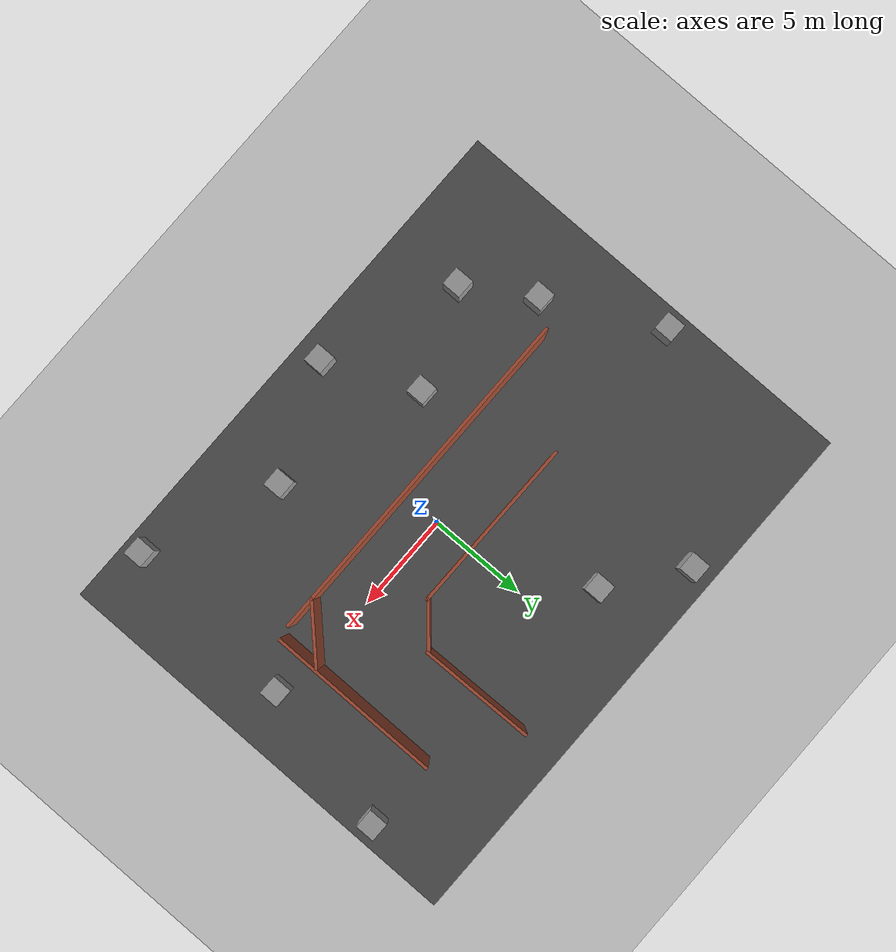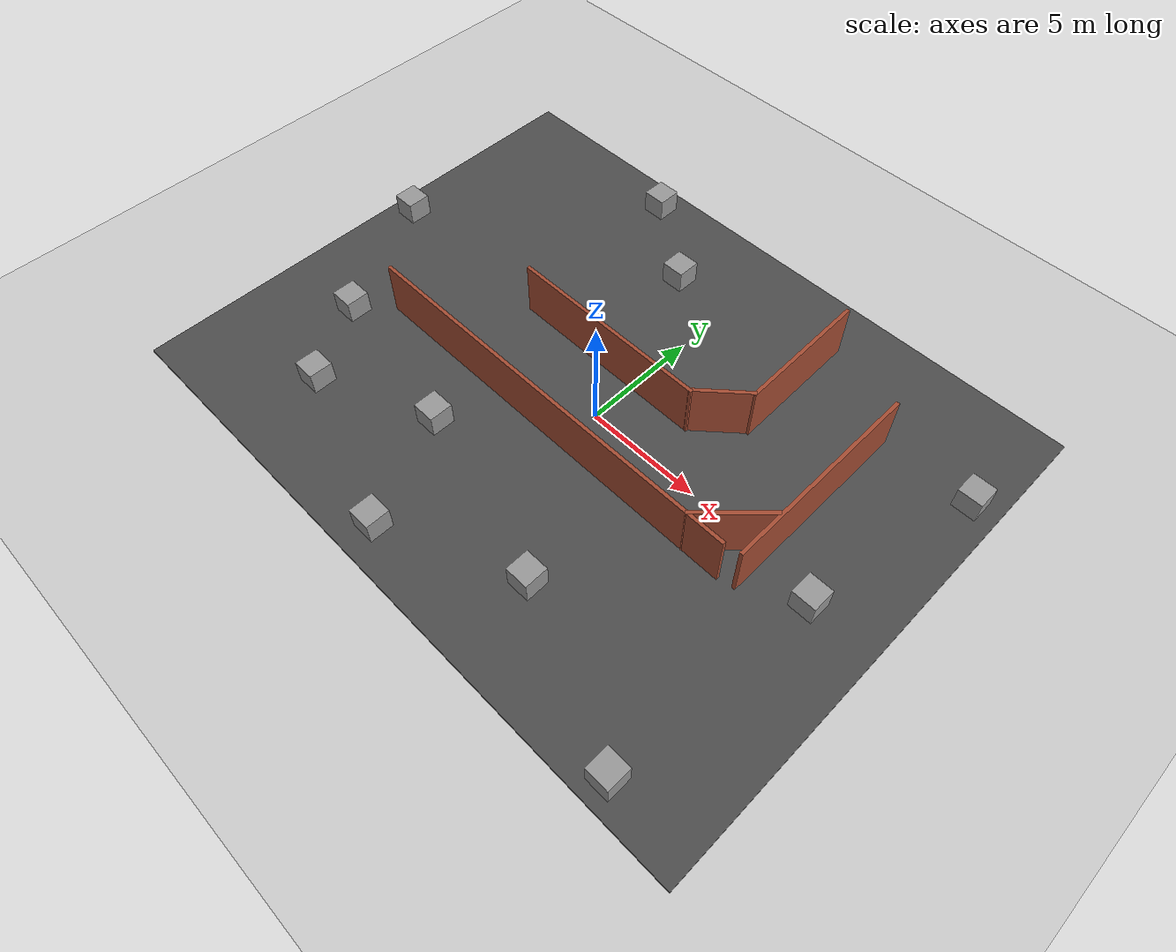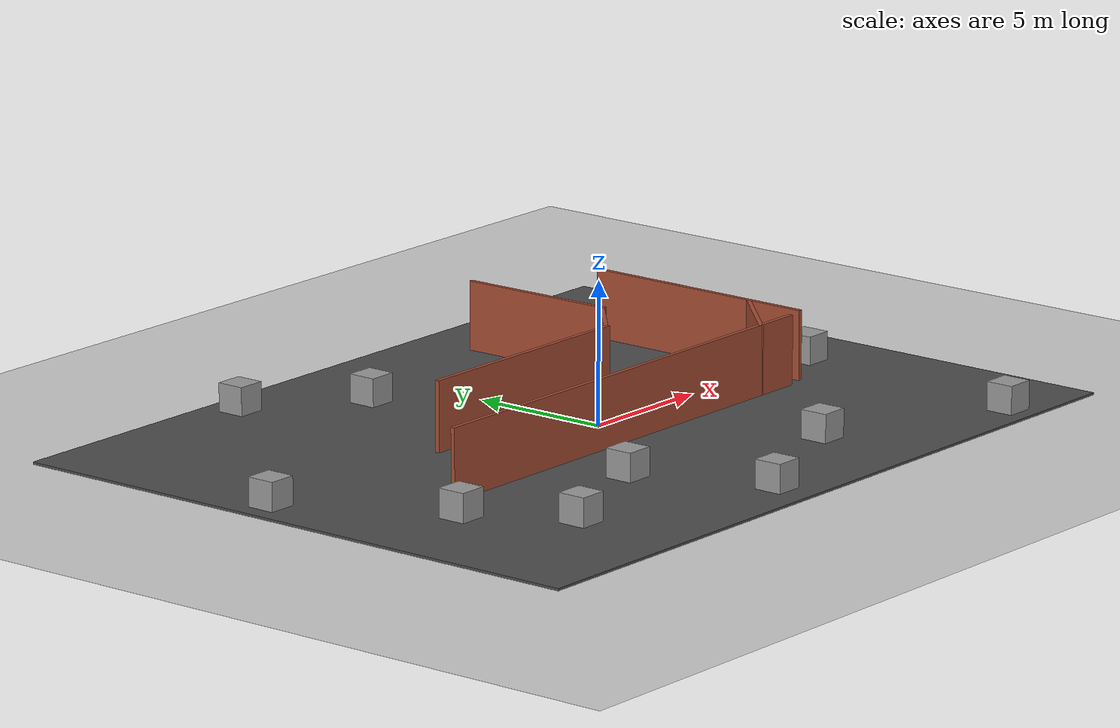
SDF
<sdf version="1.7">
 <world name="default">
  <light name="sun" type="directional">
   <pose>0 0 100 0 -0 0</pose>
   <diffuse>0.8 0.8 0.8 1</diffuse>
   <specular>0.1 0.1 0.1 1</specular>
   <attenuation>
    <range>1000</range>
    <constant>0.9</constant>
    <linear>0.01</linear>
    <quadratic>0.001</quadratic>
   </attenuation>
   <direction>-0.5 0.5 -1</direction>
   <spot><inner_angle>0</inner_angle><outer_angle>0</outer_angle><falloff>0</falloff></spot>
  </light>
  <model name="ground_plane">
   <static>1</static>
   <link name="link">
    <collision name="collision">
     <geometry><plane><normal>0 0 1</normal><size>100 100</size></plane></geometry>
     <surface><friction><ode><mu>100</mu><mu2>50</mu2></ode></friction></surface>
    </collision>
    <visual name="visual">
     <cast_shadows>0</cast_shadows>
     <geometry><plane><normal>0 0 1</normal><size>100 100</size></plane></geometry>
     <material>
      <script><uri>file://media/materials/scripts/gazebo.material</uri><name>Gazebo/Grey</name></script>
     </material>
    </visual>
   </link>
  </model>
  <gravity>0 0 -9.8</gravity>
  <magnetic_field>6e-06 2.3e-05 -4.2e-05</magnetic_field>
  <atmosphere type="adiabatic"/>
  <physics name="default_physics" default="0" type="ode">
   <max_step_size>0.001</max_step_size>
   <real_time_factor>1</real_time_factor>
   <real_time_update_rate>1000</real_time_update_rate>
  </physics>
  <scene><ambient>0.4 0.4 0.4 1</ambient><background>0.7 0.7 0.7 1</background><shadows>1</shadows></scene>
  <spherical_coordinates>
   <surface_model>EARTH_WGS84</surface_model>
   <latitude_deg>0</latitude_deg>
   <longitude_deg>0</longitude_deg>
   <elevation>0</elevation>
   <heading_deg>0</heading_deg>
  </spherical_coordinates>
  <model name="asphalt_plane">
   <static>1</static>
   <link name="link">
    <collision name="collision"><geometry><box><size>28.54 22.04 0.1</size></box></geometry></collision>
    <visual name="visual">
     <cast_shadows>0</cast_shadows>
     <geometry><box><size>28.54 22.04 0.1</size></box></geometry>
     <material>
      <script>
       <uri>model://asphalt_plane/materials/scripts</uri>
       <uri>model://asphalt_plane/materials/textures</uri>
       <name>vrc/asphalt</name>
      </script>
     </material>
    </visual>
   </link>
   <pose>-0.719505 0.551979 0 0 -0 0</pose>
  </model>
  <audio><device>default</device></audio>
  <model name="unit_box_clone">
   <pose>-9.02989 -6.55584 0.550002 -4e-06 -0 3.6e-05</pose>
   <link name="link">
    <inertial>
     <mass>1</mass>
     <inertia>
      <ixx>0.166667</ixx>
      <ixy>0</ixy>
      <ixz>0</ixz>
      <iyy>0.166667</iyy>
      <iyz>0</iyz>
      <izz>0.166667</izz>
     </inertia>
    </inertial>
    <collision name="collision"><geometry><box><size>1 1 1</size></box></geometry></collision>
    <visual name="visual">
     <geometry><box><size>1 1 1</size></box></geometry>
     <material>
      <script><name>Gazebo/Grey</name><uri>file://media/materials/scripts/gazebo.material</uri></script>
     </material>
    </visual>
   </link>
  </model>
  <model name="unit_box_clone_0">
   <pose>-2.13903 -9.0825 0.549999 -2e-06 0 2.8e-05</pose>
   <link name="link">
    <inertial>
     <mass>1</mass>
     <inertia>
      <ixx>0.166667</ixx>
      <ixy>0</ixy>
      <ixz>0</ixz>
      <iyy>0.166667</iyy>
      <iyz>0</iyz>
      <izz>0.166667</izz>
     </inertia>
    </inertial>
    <collision name="collision"><geometry><box><size>1 1 1</size></box></geometry></collision>
    <visual name="visual">
     <geometry><box><size>1 1 1</size></box></geometry>
     <material>
      <script><name>Gazebo/Grey</name><uri>file://media/materials/scripts/gazebo.material</uri></script>
     </material>
    </visual>
   </link>
  </model>
  <model name="unit_box_clone_2">
   <pose>10.7422 -0.497049 0.55 0 -0 3.4e-05</pose>
   <link name="link">
    <inertial>
     <mass>1</mass>
     <inertia>
      <ixx>0.166667</ixx>
      <ixy>0</ixy>
      <ixz>0</ixz>
      <iyy>0.166667</iyy>
      <iyz>0</iyz>
      <izz>0.166667</izz>
     </inertia>
    </inertial>
    <collision name="collision"><geometry><box><size>1 1 1</size></box></geometry></collision>
    <visual name="visual">
     <geometry><box><size>1 1 1</size></box></geometry>
     <material>
      <script><name>Gazebo/Grey</name><uri>file://media/materials/scripts/gazebo.material</uri></script>
     </material>
    </visual>
   </link>
  </model>
  <model name="unit_box_clone_5">
   <pose>10.03 -9.45251 0.549999 -2e-06 -0 -0.001073</pose>
   <link name="link">
    <inertial>
     <mass>1</mass>
     <inertia>
      <ixx>0.166667</ixx>
      <ixy>0</ixy>
      <ixz>0</ixz>
      <iyy>0.166667</iyy>
      <iyz>0</iyz>
      <izz>0.166667</izz>
     </inertia>
    </inertial>
    <collision name="collision"><geometry><box><size>1 1 1</size></box></geometry></collision>
    <visual name="visual">
     <geometry><box><size>1 1 1</size></box></geometry>
     <material>
      <script><name>Gazebo/Grey</name><uri>file://media/materials/scripts/gazebo.material</uri></script>
     </material>
    </visual>
   </link>
  </model>
  <model name="unit_box_clone_9">
   <pose>12.4219 6.83818 0.549999 -2e-06 -0 3e-05</pose>
   <link name="link">
    <inertial>
     <mass>1</mass>
     <inertia>
      <ixx>0.166667</ixx>
      <ixy>0</ixy>
      <ixz>0</ixz>
      <iyy>0.166667</iyy>
      <iyz>0</iyz>
      <izz>0.166667</izz>
     </inertia>
    </inertial>
    <collision name="collision"><geometry><box><size>1 1 1</size></box></geometry></collision>
    <visual name="visual">
     <geometry><box><size>1 1 1</size></box></geometry>
     <material>
      <script><name>Gazebo/Grey</name><uri>file://media/materials/scripts/gazebo.material</uri></script>
     </material>
    </visual>
   </link>
  </model>
  <model name="unit_box_clone_11">
   <pose>-2.61677 7.65172 0.550002 -4e-06 -0 2.8e-05</pose>
   <link name="link">
    <inertial>
     <mass>1</mass>
     <inertia>
      <ixx>0.166667</ixx>
      <ixy>0</ixy>
      <ixz>0</ixz>
      <iyy>0.166667</iyy>
      <iyz>0</iyz>
      <izz>0.166667</izz>
     </inertia>
    </inertial>
    <collision name="collision"><geometry><box><size>1 1 1</size></box></geometry></collision>
    <visual name="visual">
     <geometry><box><size>1 1 1</size></box></geometry>
     <material>
      <script><name>Gazebo/Grey</name><uri>file://media/materials/scripts/gazebo.material</uri></script>
     </material>
    </visual>
   </link>
  </model>
  <model name="unit_box_clone_12">
   <pose>-6.20181 10.3429 0.550002 -4e-06 -0 2.8e-05</pose>
   <link name="link">
    <inertial>
     <mass>1</mass>
     <inertia>
      <ixx>0.166667</ixx>
      <ixy>0</ixy>
      <ixz>0</ixz>
      <iyy>0.166667</iyy>
      <iyz>0</iyz>
      <izz>0.166667</izz>
     </inertia>
    </inertial>
    <collision name="collision"><geometry><box><size>1 1 1</size></box></geometry></collision>
    <visual name="visual">
     <geometry><box><size>1 1 1</size></box></geometry>
     <material>
      <script><name>Gazebo/Grey</name><uri>file://media/materials/scripts/gazebo.material</uri></script>
     </material>
    </visual>
   </link>
  </model>
  <model name="unit_box_clone_14">
   <pose>-13.9085 2.23418 0.549999 -2e-06 0 1.7e-05</pose>
   <link name="link">
    <inertial>
     <mass>1</mass>
     <inertia>
      <ixx>0.166667</ixx>
      <ixy>0</ixy>
      <ixz>0</ixz>
      <iyy>0.166667</iyy>
      <iyz>0</iyz>
      <izz>0.166667</izz>
     </inertia>
    </inertial>
    <collision name="collision"><geometry><box><size>1 1 1</size></box></geometry></collision>
    <visual name="visual">
     <geometry><box><size>1 1 1</size></box></geometry>
     <material>
      <script><name>Gazebo/Grey</name><uri>file://media/materials/scripts/gazebo.material</uri></script>
     </material>
    </visual>
   </link>
  </model>
  <model name="unit_box_clone_16">
   <pose>-11.0431 -3.28246 0.549999 -2e-06 0 2.2e-05</pose>
   <link name="link">
    <inertial>
     <mass>1</mass>
     <inertia>
      <ixx>0.166667</ixx>
      <ixy>0</ixy>
      <ixz>0</ixz>
      <iyy>0.166667</iyy>
      <iyz>0</iyz>
      <izz>0.166667</izz>
     </inertia>
    </inertial>
    <collision name="collision"><geometry><box><size>1 1 1</size></box></geometry></collision>
    <visual name="visual">
     <geometry><box><size>1 1 1</size></box></geometry>
     <material>
      <script><name>Gazebo/Grey</name><uri>file://media/materials/scripts/gazebo.material</uri></script>
     </material>
    </visual>
   </link>
  </model>
  <model name="unit_box_clone_clone">
   <pose>-4.15813 -4.55215 0.549999 -2e-06 0 3.3e-05</pose>
   <link name="link">
    <inertial>
     <mass>1</mass>
     <inertia>
      <ixx>0.166667</ixx>
      <ixy>0</ixy>
      <ixz>0</ixz>
      <iyy>0.166667</iyy>
      <iyz>0</iyz>
      <izz>0.166667</izz>
     </inertia>
    </inertial>
    <collision name="collision"><geometry><box><size>1 1 1</size></box></geometry></collision>
    <visual name="visual">
     <geometry><box><size>1 1 1</size></box></geometry>
     <material>
      <script><name>Gazebo/Grey</name><uri>file://media/materials/scripts/gazebo.material</uri></script>
     </material>
    </visual>
   </link>
  </model>
  <model name="unit_box_clone_clone_clone">
   <pose>3.42775 -6.6925 0.55 0 -0 0.009917</pose>
   <link name="link">
    <inertial>
     <mass>1</mass>
     <inertia>
      <ixx>0.166667</ixx>
      <ixy>0</ixy>
      <ixz>0</ixz>
      <iyy>0.166667</iyy>
      <iyz>0</iyz>
      <izz>0.166667</izz>
     </inertia>
    </inertial>
    <collision name="collision"><geometry><box><size>1 1 1</size></box></geometry></collision>
    <visual name="visual">
     <geometry><box><size>1 1 1</size></box></geometry>
     <material>
      <script><name>Gazebo/Grey</name><uri>file://media/materials/scripts/gazebo.material</uri></script>
     </material>
    </visual>
   </link>
  </model>
  <model name="Untitled">
   <pose>-0.594689 3.62496 0 0 -0 0</pose>
   <link name="Wall_0">
    <collision name="Wall_0_Collision">
     <geometry><box><size>17.75 0.15 2.5</size></box></geometry>
     <pose>0 0 1.25 0 -0 0</pose>
    </collision>
    <visual name="Wall_0_Visual">
     <pose>0 0 1.25 0 -0 0</pose>
     <geometry><box><size>17.75 0.15 2.5</size></box></geometry>
     <material>
      <script><uri>file://media/materials/scripts/gazebo.material</uri><name>Gazebo/Bricks</name></script>
      <ambient>1 1 1 1</ambient>
     </material>
     <meta><layer>0</layer></meta>
    </visual>
    <pose>-0.355311 -5.55256 0 0 -0 -0.000864</pose>
   </link>
   <link name="Wall_13">
    <collision name="Wall_13_Collision">
     <geometry><box><size>3.25 0.15 2.5</size></box></geometry>
     <pose>0 0 1.25 0 -0 0</pose>
    </collision>
    <visual name="Wall_13_Visual">
     <pose>0 0 1.25 0 -0 0</pose>
     <geometry><box><size>3.25 0.15 2.5</size></box></geometry>
     <material>
      <script><uri>file://media/materials/scripts/gazebo.material</uri><name>Gazebo/Bricks</name></script>
      <ambient>1 1 1 1</ambient>
     </material>
     <meta><layer>0</layer></meta>
    </visual>
    <pose>7.95512 -4.45974 0 0 -0 -2.35619</pose>
   </link>
   <link name="Wall_18">
    <collision name="Wall_18_Collision">
     <geometry><box><size>5.80344 0.15 2.5</size></box></geometry>
     <pose>0 0 1.25 0 -0 0</pose>
    </collision>
    <visual name="Wall_18_Visual">
     <pose>0 0 1.25 0 -0 0</pose>
     <geometry><box><size>5.80344 0.15 2.5</size></box></geometry>
     <material>
      <script><uri>file://media/materials/scripts/gazebo.material</uri><name>Gazebo/Bricks</name></script>
      <ambient>1 1 1 1</ambient>
     </material>
     <meta><layer>0</layer></meta>
    </visual>
    <pose>5.215 2.7592 0 0 -0 -1.55223</pose>
   </link>
   <link name="Wall_2">
    <collision name="Wall_2_Collision">
     <geometry><box><size>8.8551 0.15 2.5</size></box></geometry>
     <pose>0 0 1.25 0 -0 0</pose>
    </collision>
    <visual name="Wall_2_Visual">
     <pose>0 0 1.25 0 -0 0</pose>
     <geometry><box><size>8.8551 0.15 2.5</size></box></geometry>
     <material>
      <script><uri>file://media/materials/scripts/gazebo.material</uri><name>Gazebo/Bricks</name></script>
      <ambient>1 1 1 1</ambient>
     </material>
     <meta><layer>0</layer></meta>
    </visual>
    <pose>-0.861116 -1.61452 0 0 -0 -0.006028</pose>
   </link>
   <link name="Wall_20">
    <collision name="Wall_20_Collision">
     <geometry><box><size>2.52302 0.15 2.5</size></box></geometry>
     <pose>0 0 1.25 0 -0 0</pose>
    </collision>
    <visual name="Wall_20_Visual">
     <pose>0 0 1.25 0 -0 0</pose>
     <geometry><box><size>2.52302 0.15 2.5</size></box></geometry>
     <material>
      <script><uri>file://media/materials/scripts/gazebo.material</uri><name>Gazebo/Bricks</name></script>
      <ambient>1 1 1 1</ambient>
     </material>
     <meta><layer>0</layer></meta>
    </visual>
    <pose>4.34443 -0.836404 0 0 -0 0.725052</pose>
   </link>
   <link name="Wall_6">
    <collision name="Wall_6_Collision">
     <geometry><box><size>8.75 0.15 2.5</size></box></geometry>
     <pose>0 0 1.25 0 -0 0</pose>
    </collision>
    <visual name="Wall_6_Visual">
     <pose>0 0 1.25 0 -0 0</pose>
     <geometry><box><size>8.75 0.15 2.5</size></box></geometry>
     <material>
      <script><uri>file://media/materials/scripts/gazebo.material</uri><name>Gazebo/Bricks</name></script>
      <ambient>1 1 1 1</ambient>
     </material>
     <meta><layer>0</layer></meta>
    </visual>
    <pose>9.15537 -1.10116 0 0 -0 -1.5708</pose>
   </link>
   <static>1</static>
  </model>
 </world>
</sdf>
